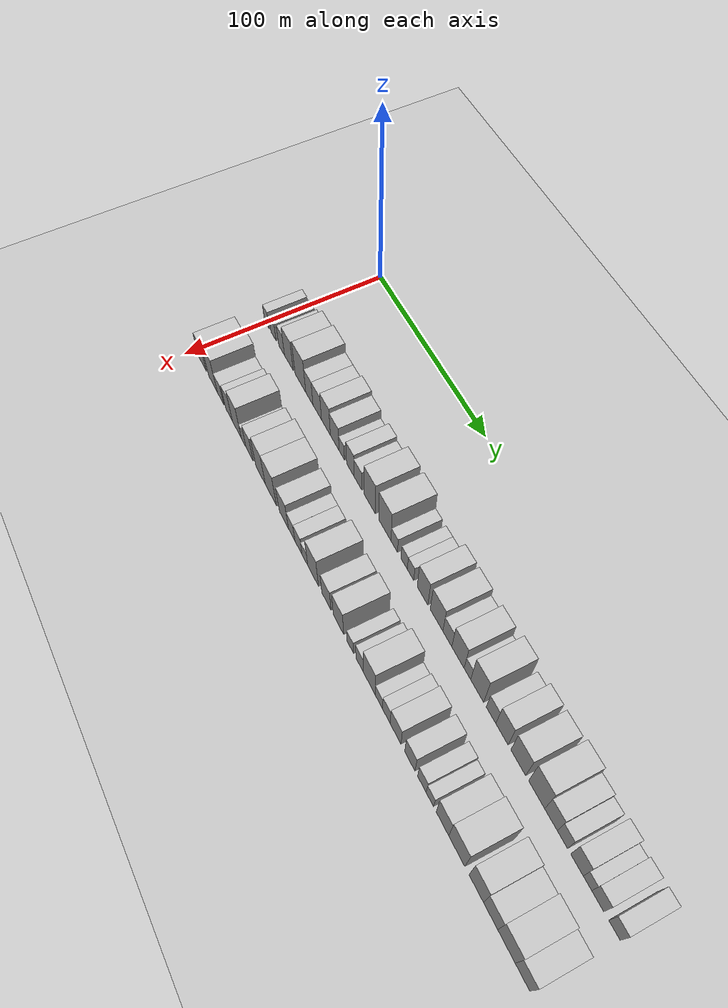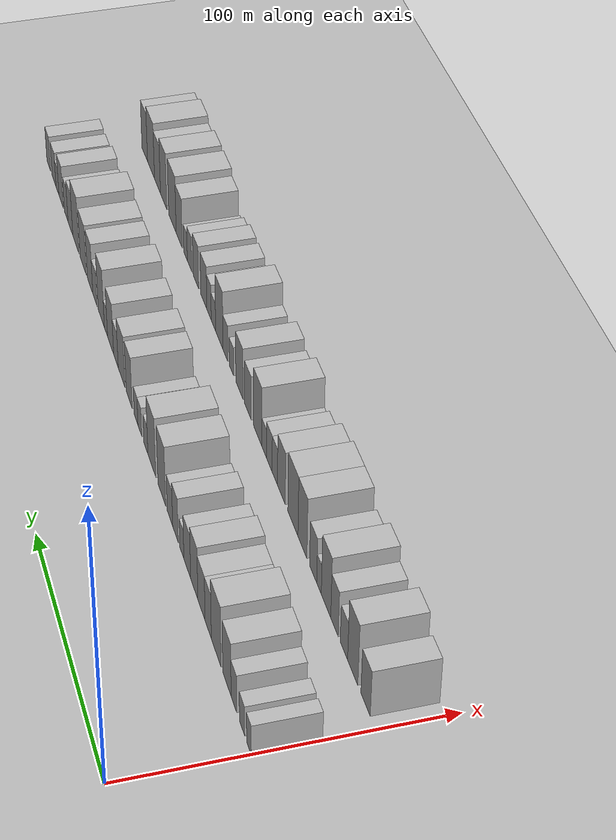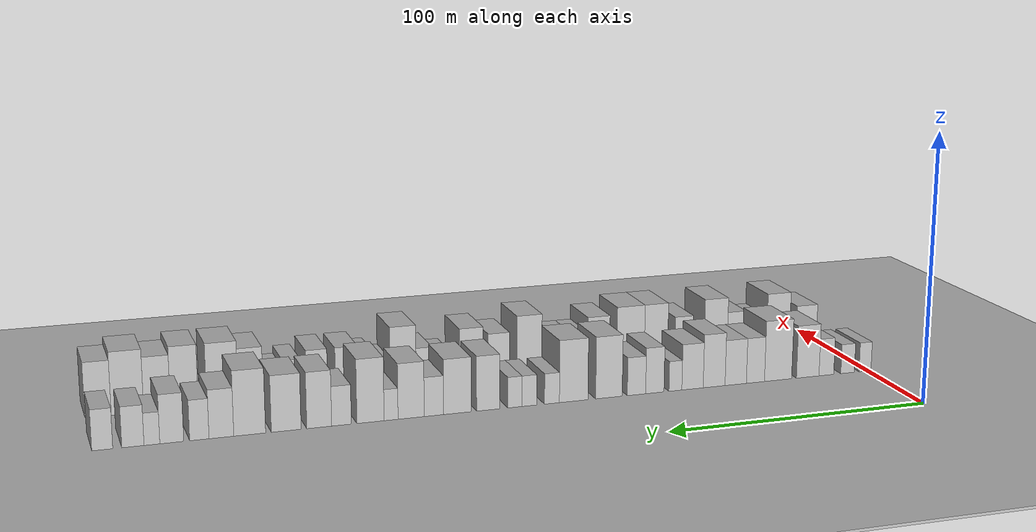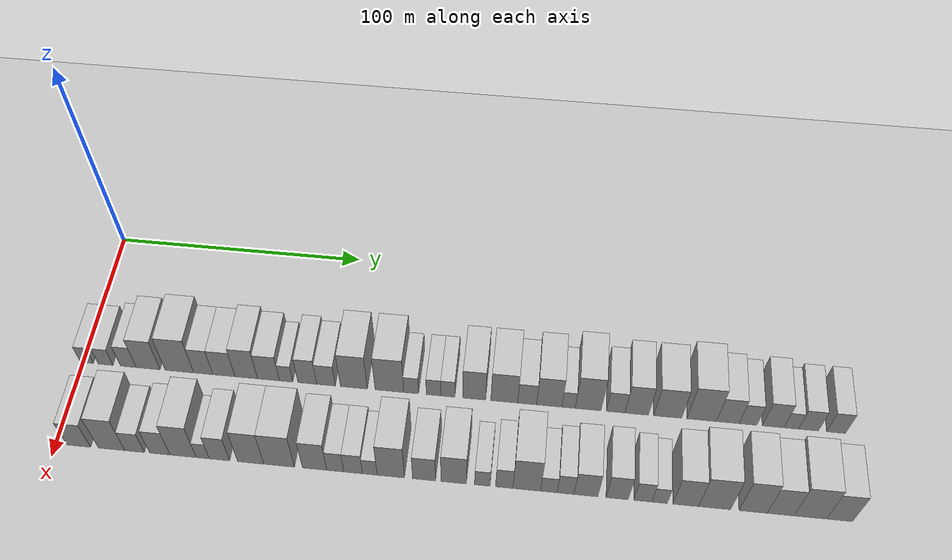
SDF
<sdf version="1.6">
 <world name="default">
  <include><name>ground_plane_1</name><uri>model://HANNAS_ground_plane</uri></include>
  <include>
   <name>ground_plane_2</name>
   <uri>model://HANNAS_ground_plane</uri>
   <pose>100 0 0  0 0 0</pose>
  </include>
  <model name="building_34">
   <static>1</static>
   <pose>50.0000 1.8342 0 0.000000 0.000000 0.000000</pose>
   <link name="link">
    <pose>0 0 6.00 0 0 0</pose>
    <collision name="collision"><geometry><box><size>20.0000 5.1160 12.0000</size></box></geometry></collision>
    <visual name="visual">
     <cast_shadows>0</cast_shadows>
     <geometry><box><size>20.0000 5.1160 12.0000</size></box></geometry>
     <material>
      <script>
       <uri>model://HANNAS_wall/materials/scripts</uri>
       <uri>model://HANNAS_wall/materials/textures</uri>
       <name>vrc/HANNAS_wall</name>
      </script>
     </material>
    </visual>
   </link>
  </model>
  <model name="building_35">
   <static>1</static>
   <pose>50.0000 9.2959 0 0.000000 0.000000 0.000000</pose>
   <link name="link">
    <pose>0 0 6.00 0 0 0</pose>
    <collision name="collision"><geometry><box><size>20.0000 5.8074 12.0000</size></box></geometry></collision>
    <visual name="visual">
     <cast_shadows>0</cast_shadows>
     <geometry><box><size>20.0000 5.8074 12.0000</size></box></geometry>
     <material>
      <script>
       <uri>model://HANNAS_wall/materials/scripts</uri>
       <uri>model://HANNAS_wall/materials/textures</uri>
       <name>vrc/HANNAS_wall</name>
      </script>
     </material>
    </visual>
   </link>
  </model>
  <model name="building_36">
   <static>1</static>
   <pose>50.0000 18.3228 0 0.000000 0.000000 0.000000</pose>
   <link name="link">
    <pose>0 0 7.50 0 0 0</pose>
    <collision name="collision"><geometry><box><size>20.0000 6.2464 15.0000</size></box></geometry></collision>
    <visual name="visual">
     <cast_shadows>0</cast_shadows>
     <geometry><box><size>20.0000 6.2464 15.0000</size></box></geometry>
     <material>
      <script>
       <uri>model://HANNAS_wall/materials/scripts</uri>
       <uri>model://HANNAS_wall/materials/textures</uri>
       <name>vrc/HANNAS_wall</name>
      </script>
     </material>
    </visual>
   </link>
  </model>
  <model name="building_37">
   <static>1</static>
   <pose>50.0000 26.1882 0 0.000000 0.000000 0.000000</pose>
   <link name="link">
    <pose>0 0 10.50 0 0 0</pose>
    <collision name="collision"><geometry><box><size>20.0000 9.4845 21.0000</size></box></geometry></collision>
    <visual name="visual">
     <cast_shadows>0</cast_shadows>
     <geometry><box><size>20.0000 9.4845 21.0000</size></box></geometry>
     <material>
      <script>
       <uri>model://HANNAS_wall/materials/scripts</uri>
       <uri>model://HANNAS_wall/materials/textures</uri>
       <name>vrc/HANNAS_wall</name>
      </script>
     </material>
    </visual>
   </link>
  </model>
  <model name="building_38">
   <static>1</static>
   <pose>50.0000 38.5877 0 0.000000 0.000000 0.000000</pose>
   <link name="link">
    <pose>0 0 12.00 0 0 0</pose>
    <collision name="collision"><geometry><box><size>20.0000 11.3144 24.0000</size></box></geometry></collision>
    <visual name="visual">
     <cast_shadows>0</cast_shadows>
     <geometry><box><size>20.0000 11.3144 24.0000</size></box></geometry>
     <material>
      <script>
       <uri>model://HANNAS_wall/materials/scripts</uri>
       <uri>model://HANNAS_wall/materials/textures</uri>
       <name>vrc/HANNAS_wall</name>
      </script>
     </material>
    </visual>
   </link>
  </model>
  <model name="building_39">
   <static>1</static>
   <pose>50.0000 47.9888 0 0.000000 0.000000 0.000000</pose>
   <link name="link">
    <pose>0 0 9.00 0 0 0</pose>
    <collision name="collision"><geometry><box><size>20.0000 7.4880 18.0000</size></box></geometry></collision>
    <visual name="visual">
     <cast_shadows>0</cast_shadows>
     <geometry><box><size>20.0000 7.4880 18.0000</size></box></geometry>
     <material>
      <script>
       <uri>model://HANNAS_wall/materials/scripts</uri>
       <uri>model://HANNAS_wall/materials/textures</uri>
       <name>vrc/HANNAS_wall</name>
      </script>
     </material>
    </visual>
   </link>
  </model>
  <model name="building_40">
   <static>1</static>
   <pose>50.0000 56.1021 0 0.000000 0.000000 0.000000</pose>
   <link name="link">
    <pose>0 0 9.00 0 0 0</pose>
    <collision name="collision"><geometry><box><size>20.0000 8.7385 18.0000</size></box></geometry></collision>
    <visual name="visual">
     <cast_shadows>0</cast_shadows>
     <geometry><box><size>20.0000 8.7385 18.0000</size></box></geometry>
     <material>
      <script>
       <uri>model://HANNAS_wall/materials/scripts</uri>
       <uri>model://HANNAS_wall/materials/textures</uri>
       <name>vrc/HANNAS_wall</name>
      </script>
     </material>
    </visual>
   </link>
  </model>
  <model name="building_41">
   <static>1</static>
   <pose>50.0000 64.9171 0 0.000000 0.000000 0.000000</pose>
   <link name="link">
    <pose>0 0 10.50 0 0 0</pose>
    <collision name="collision"><geometry><box><size>20.0000 8.8916 21.0000</size></box></geometry></collision>
    <visual name="visual">
     <cast_shadows>0</cast_shadows>
     <geometry><box><size>20.0000 8.8916 21.0000</size></box></geometry>
     <material>
      <script>
       <uri>model://HANNAS_wall/materials/scripts</uri>
       <uri>model://HANNAS_wall/materials/textures</uri>
       <name>vrc/HANNAS_wall</name>
      </script>
     </material>
    </visual>
   </link>
  </model>
  <model name="building_42">
   <static>1</static>
   <pose>50.0000 73.6666 0 0.000000 0.000000 0.000000</pose>
   <link name="link">
    <pose>0 0 9.00 0 0 0</pose>
    <collision name="collision"><geometry><box><size>20.0000 8.6075 18.0000</size></box></geometry></collision>
    <visual name="visual">
     <cast_shadows>0</cast_shadows>
     <geometry><box><size>20.0000 8.6075 18.0000</size></box></geometry>
     <material>
      <script>
       <uri>model://HANNAS_wall/materials/scripts</uri>
       <uri>model://HANNAS_wall/materials/textures</uri>
       <name>vrc/HANNAS_wall</name>
      </script>
     </material>
    </visual>
   </link>
  </model>
  <model name="building_43">
   <static>1</static>
   <pose>50.0000 80.5602 0 0.000000 0.000000 0.000000</pose>
   <link name="link">
    <pose>0 0 6.00 0 0 0</pose>
    <collision name="collision"><geometry><box><size>20.0000 5.1797 12.0000</size></box></geometry></collision>
    <visual name="visual">
     <cast_shadows>0</cast_shadows>
     <geometry><box><size>20.0000 5.1797 12.0000</size></box></geometry>
     <material>
      <script>
       <uri>model://HANNAS_wall/materials/scripts</uri>
       <uri>model://HANNAS_wall/materials/textures</uri>
       <name>vrc/HANNAS_wall</name>
      </script>
     </material>
    </visual>
   </link>
  </model>
  <model name="building_44">
   <static>1</static>
   <pose>50.0000 88.7926 0 0.000000 0.000000 0.000000</pose>
   <link name="link">
    <pose>0 0 9.00 0 0 0</pose>
    <collision name="collision"><geometry><box><size>20.0000 7.2850 18.0000</size></box></geometry></collision>
    <visual name="visual">
     <cast_shadows>0</cast_shadows>
     <geometry><box><size>20.0000 7.2850 18.0000</size></box></geometry>
     <material>
      <script>
       <uri>model://HANNAS_wall/materials/scripts</uri>
       <uri>model://HANNAS_wall/materials/textures</uri>
       <name>vrc/HANNAS_wall</name>
      </script>
     </material>
    </visual>
   </link>
  </model>
  <model name="building_45">
   <static>1</static>
   <pose>50.0000 96.0715 0 0.000000 0.000000 0.000000</pose>
   <link name="link">
    <pose>0 0 7.50 0 0 0</pose>
    <collision name="collision"><geometry><box><size>20.0000 7.2729 15.0000</size></box></geometry></collision>
    <visual name="visual">
     <cast_shadows>0</cast_shadows>
     <geometry><box><size>20.0000 7.2729 15.0000</size></box></geometry>
     <material>
      <script>
       <uri>model://HANNAS_wall/materials/scripts</uri>
       <uri>model://HANNAS_wall/materials/textures</uri>
       <name>vrc/HANNAS_wall</name>
      </script>
     </material>
    </visual>
   </link>
  </model>
  <model name="building_46">
   <static>1</static>
   <pose>50.0000 106.9145 0 0.000000 0.000000 0.000000</pose>
   <link name="link">
    <pose>0 0 12.00 0 0 0</pose>
    <collision name="collision"><geometry><box><size>20.0000 10.4130 24.0000</size></box></geometry></collision>
    <visual name="visual">
     <cast_shadows>0</cast_shadows>
     <geometry><box><size>20.0000 10.4130 24.0000</size></box></geometry>
     <material>
      <script>
       <uri>model://HANNAS_wall/materials/scripts</uri>
       <uri>model://HANNAS_wall/materials/textures</uri>
       <name>vrc/HANNAS_wall</name>
      </script>
     </material>
    </visual>
   </link>
  </model>
  <model name="building_47">
   <static>1</static>
   <pose>50.0000 120.6507 0 0.000000 0.000000 0.000000</pose>
   <link name="link">
    <pose>0 0 12.00 0 0 0</pose>
    <collision name="collision"><geometry><box><size>20.0000 11.0594 24.0000</size></box></geometry></collision>
    <visual name="visual">
     <cast_shadows>0</cast_shadows>
     <geometry><box><size>20.0000 11.0594 24.0000</size></box></geometry>
     <material>
      <script>
       <uri>model://HANNAS_wall/materials/scripts</uri>
       <uri>model://HANNAS_wall/materials/textures</uri>
       <name>vrc/HANNAS_wall</name>
      </script>
     </material>
    </visual>
   </link>
  </model>
  <model name="building_48">
   <static>1</static>
   <pose>50.0000 129.0398 0 0.000000 0.000000 0.000000</pose>
   <link name="link">
    <pose>0 0 6.00 0 0 0</pose>
    <collision name="collision"><geometry><box><size>20.0000 5.7189 12.0000</size></box></geometry></collision>
    <visual name="visual">
     <cast_shadows>0</cast_shadows>
     <geometry><box><size>20.0000 5.7189 12.0000</size></box></geometry>
     <material>
      <script>
       <uri>model://HANNAS_wall/materials/scripts</uri>
       <uri>model://HANNAS_wall/materials/textures</uri>
       <name>vrc/HANNAS_wall</name>
      </script>
     </material>
    </visual>
   </link>
  </model>
  <model name="building_49">
   <static>1</static>
   <pose>50.0000 137.6618 0 0.000000 0.000000 0.000000</pose>
   <link name="link">
    <pose>0 0 6.00 0 0 0</pose>
    <collision name="collision"><geometry><box><size>20.0000 5.5251 12.0000</size></box></geometry></collision>
    <visual name="visual">
     <cast_shadows>0</cast_shadows>
     <geometry><box><size>20.0000 5.5251 12.0000</size></box></geometry>
     <material>
      <script>
       <uri>model://HANNAS_wall/materials/scripts</uri>
       <uri>model://HANNAS_wall/materials/textures</uri>
       <name>vrc/HANNAS_wall</name>
      </script>
     </material>
    </visual>
   </link>
  </model>
  <model name="building_50">
   <static>1</static>
   <pose>50.0000 143.1332 0 0.000000 0.000000 0.000000</pose>
   <link name="link">
    <pose>0 0 6.00 0 0 0</pose>
    <collision name="collision"><geometry><box><size>20.0000 5.4177 12.0000</size></box></geometry></collision>
    <visual name="visual">
     <cast_shadows>0</cast_shadows>
     <geometry><box><size>20.0000 5.4177 12.0000</size></box></geometry>
     <material>
      <script>
       <uri>model://HANNAS_wall/materials/scripts</uri>
       <uri>model://HANNAS_wall/materials/textures</uri>
       <name>vrc/HANNAS_wall</name>
      </script>
     </material>
    </visual>
   </link>
  </model>
  <model name="building_51">
   <static>1</static>
   <pose>50.0000 153.2381 0 0.000000 0.000000 0.000000</pose>
   <link name="link">
    <pose>0 0 10.50 0 0 0</pose>
    <collision name="collision"><geometry><box><size>20.0000 8.7923 21.0000</size></box></geometry></collision>
    <visual name="visual">
     <cast_shadows>0</cast_shadows>
     <geometry><box><size>20.0000 8.7923 21.0000</size></box></geometry>
     <material>
      <script>
       <uri>model://HANNAS_wall/materials/scripts</uri>
       <uri>model://HANNAS_wall/materials/textures</uri>
       <name>vrc/HANNAS_wall</name>
      </script>
     </material>
    </visual>
   </link>
  </model>
  <model name="building_52">
   <static>1</static>
   <pose>50.0000 164.7484 0 0.000000 0.000000 0.000000</pose>
   <link name="link">
    <pose>0 0 10.50 0 0 0</pose>
    <collision name="collision"><geometry><box><size>20.0000 10.2283 21.0000</size></box></geometry></collision>
    <visual name="visual">
     <cast_shadows>0</cast_shadows>
     <geometry><box><size>20.0000 10.2283 21.0000</size></box></geometry>
     <material>
      <script>
       <uri>model://HANNAS_wall/materials/scripts</uri>
       <uri>model://HANNAS_wall/materials/textures</uri>
       <name>vrc/HANNAS_wall</name>
      </script>
     </material>
    </visual>
   </link>
  </model>
  <model name="building_53">
   <static>1</static>
   <pose>50.0000 173.4440 0 0.000000 0.000000 0.000000</pose>
   <link name="link">
    <pose>0 0 7.50 0 0 0</pose>
    <collision name="collision"><geometry><box><size>20.0000 7.1629 15.0000</size></box></geometry></collision>
    <visual name="visual">
     <cast_shadows>0</cast_shadows>
     <geometry><box><size>20.0000 7.1629 15.0000</size></box></geometry>
     <material>
      <script>
       <uri>model://HANNAS_wall/materials/scripts</uri>
       <uri>model://HANNAS_wall/materials/textures</uri>
       <name>vrc/HANNAS_wall</name>
      </script>
     </material>
    </visual>
   </link>
  </model>
  <model name="building_54">
   <static>1</static>
   <pose>50.0000 181.8233 0 0.000000 0.000000 0.000000</pose>
   <link name="link">
    <pose>0 0 10.50 0 0 0</pose>
    <collision name="collision"><geometry><box><size>20.0000 9.5958 21.0000</size></box></geometry></collision>
    <visual name="visual">
     <cast_shadows>0</cast_shadows>
     <geometry><box><size>20.0000 9.5958 21.0000</size></box></geometry>
     <material>
      <script>
       <uri>model://HANNAS_wall/materials/scripts</uri>
       <uri>model://HANNAS_wall/materials/textures</uri>
       <name>vrc/HANNAS_wall</name>
      </script>
     </material>
    </visual>
   </link>
  </model>
  <model name="building_55">
   <static>1</static>
   <pose>50.0000 189.1549 0 0.000000 0.000000 0.000000</pose>
   <link name="link">
    <pose>0 0 6.00 0 0 0</pose>
    <collision name="collision"><geometry><box><size>20.0000 5.0674 12.0000</size></box></geometry></collision>
    <visual name="visual">
     <cast_shadows>0</cast_shadows>
     <geometry><box><size>20.0000 5.0674 12.0000</size></box></geometry>
     <material>
      <script>
       <uri>model://HANNAS_wall/materials/scripts</uri>
       <uri>model://HANNAS_wall/materials/textures</uri>
       <name>vrc/HANNAS_wall</name>
      </script>
     </material>
    </visual>
   </link>
  </model>
  <model name="building_56">
   <static>1</static>
   <pose>50.0000 196.6018 0 0.000000 0.000000 0.000000</pose>
   <link name="link">
    <pose>0 0 12.00 0 0 0</pose>
    <collision name="collision"><geometry><box><size>20.0000 9.8264 24.0000</size></box></geometry></collision>
    <visual name="visual">
     <cast_shadows>0</cast_shadows>
     <geometry><box><size>20.0000 9.8264 24.0000</size></box></geometry>
     <material>
      <script>
       <uri>model://HANNAS_wall/materials/scripts</uri>
       <uri>model://HANNAS_wall/materials/textures</uri>
       <name>vrc/HANNAS_wall</name>
      </script>
     </material>
    </visual>
   </link>
  </model>
  <model name="building_57">
   <static>1</static>
   <pose>50.0000 207.0331 0 0.000000 0.000000 0.000000</pose>
   <link name="link">
    <pose>0 0 7.50 0 0 0</pose>
    <collision name="collision"><geometry><box><size>20.0000 7.0361 15.0000</size></box></geometry></collision>
    <visual name="visual">
     <cast_shadows>0</cast_shadows>
     <geometry><box><size>20.0000 7.0361 15.0000</size></box></geometry>
     <material>
      <script>
       <uri>model://HANNAS_wall/materials/scripts</uri>
       <uri>model://HANNAS_wall/materials/textures</uri>
       <name>vrc/HANNAS_wall</name>
      </script>
     </material>
    </visual>
   </link>
  </model>
  <model name="building_58">
   <static>1</static>
   <pose>50.0000 214.9701 0 0.000000 0.000000 0.000000</pose>
   <link name="link">
    <pose>0 0 10.50 0 0 0</pose>
    <collision name="collision"><geometry><box><size>20.0000 8.8380 21.0000</size></box></geometry></collision>
    <visual name="visual">
     <cast_shadows>0</cast_shadows>
     <geometry><box><size>20.0000 8.8380 21.0000</size></box></geometry>
     <material>
      <script>
       <uri>model://HANNAS_wall/materials/scripts</uri>
       <uri>model://HANNAS_wall/materials/textures</uri>
       <name>vrc/HANNAS_wall</name>
      </script>
     </material>
    </visual>
   </link>
  </model>
  <model name="building_59">
   <static>1</static>
   <pose>50.0000 226.6173 0 0.000000 0.000000 0.000000</pose>
   <link name="link">
    <pose>0 0 10.50 0 0 0</pose>
    <collision name="collision"><geometry><box><size>20.0000 10.4563 21.0000</size></box></geometry></collision>
    <visual name="visual">
     <cast_shadows>0</cast_shadows>
     <geometry><box><size>20.0000 10.4563 21.0000</size></box></geometry>
     <material>
      <script>
       <uri>model://HANNAS_wall/materials/scripts</uri>
       <uri>model://HANNAS_wall/materials/textures</uri>
       <name>vrc/HANNAS_wall</name>
      </script>
     </material>
    </visual>
   </link>
  </model>
  <model name="building_60">
   <static>1</static>
   <pose>50.0000 239.3656 0 0.000000 0.000000 0.000000</pose>
   <link name="link">
    <pose>0 0 12.00 0 0 0</pose>
    <collision name="collision"><geometry><box><size>20.0000 11.0403 24.0000</size></box></geometry></collision>
    <visual name="visual">
     <cast_shadows>0</cast_shadows>
     <geometry><box><size>20.0000 11.0403 24.0000</size></box></geometry>
     <material>
      <script>
       <uri>model://HANNAS_wall/materials/scripts</uri>
       <uri>model://HANNAS_wall/materials/textures</uri>
       <name>vrc/HANNAS_wall</name>
      </script>
     </material>
    </visual>
   </link>
  </model>
  <model name="building_61">
   <static>1</static>
   <pose>50.0000 249.1334 0 0.000000 0.000000 0.000000</pose>
   <link name="link">
    <pose>0 0 9.00 0 0 0</pose>
    <collision name="collision"><geometry><box><size>20.0000 8.4952 18.0000</size></box></geometry></collision>
    <visual name="visual">
     <cast_shadows>0</cast_shadows>
     <geometry><box><size>20.0000 8.4952 18.0000</size></box></geometry>
     <material>
      <script>
       <uri>model://HANNAS_wall/materials/scripts</uri>
       <uri>model://HANNAS_wall/materials/textures</uri>
       <name>vrc/HANNAS_wall</name>
      </script>
     </material>
    </visual>
   </link>
  </model>
  <model name="building_62">
   <static>1</static>
   <pose>50.0000 256.6926 0 0.000000 0.000000 0.000000</pose>
   <link name="link">
    <pose>0 0 7.50 0 0 0</pose>
    <collision name="collision"><geometry><box><size>20.0000 6.6233 15.0000</size></box></geometry></collision>
    <visual name="visual">
     <cast_shadows>0</cast_shadows>
     <geometry><box><size>20.0000 6.6233 15.0000</size></box></geometry>
     <material>
      <script>
       <uri>model://HANNAS_wall/materials/scripts</uri>
       <uri>model://HANNAS_wall/materials/textures</uri>
       <name>vrc/HANNAS_wall</name>
      </script>
     </material>
    </visual>
   </link>
  </model>
  <model name="building_63">
   <static>1</static>
   <pose>50.0000 266.0494 0 0.000000 0.000000 0.000000</pose>
   <link name="link">
    <pose>0 0 9.00 0 0 0</pose>
    <collision name="collision"><geometry><box><size>20.0000 8.0903 18.0000</size></box></geometry></collision>
    <visual name="visual">
     <cast_shadows>0</cast_shadows>
     <geometry><box><size>20.0000 8.0903 18.0000</size></box></geometry>
     <material>
      <script>
       <uri>model://HANNAS_wall/materials/scripts</uri>
       <uri>model://HANNAS_wall/materials/textures</uri>
       <name>vrc/HANNAS_wall</name>
      </script>
     </material>
    </visual>
   </link>
  </model>
  <model name="building_64">
   <static>1</static>
   <pose>50.0000 272.7504 0 0.000000 0.000000 0.000000</pose>
   <link name="link">
    <pose>0 0 6.00 0 0 0</pose>
    <collision name="collision"><geometry><box><size>20.0000 5.3117 12.0000</size></box></geometry></collision>
    <visual name="visual">
     <cast_shadows>0</cast_shadows>
     <geometry><box><size>20.0000 5.3117 12.0000</size></box></geometry>
     <material>
      <script>
       <uri>model://HANNAS_wall/materials/scripts</uri>
       <uri>model://HANNAS_wall/materials/textures</uri>
       <name>vrc/HANNAS_wall</name>
      </script>
     </material>
    </visual>
   </link>
  </model>
  <model name="building_65">
   <static>1</static>
   <pose>50.0000 279.1155 0 0.000000 0.000000 0.000000</pose>
   <link name="link">
    <pose>0 0 7.50 0 0 0</pose>
    <collision name="collision"><geometry><box><size>20.0000 7.4184 15.0000</size></box></geometry></collision>
    <visual name="visual">
     <cast_shadows>0</cast_shadows>
     <geometry><box><size>20.0000 7.4184 15.0000</size></box></geometry>
     <material>
      <script>
       <uri>model://HANNAS_wall/materials/scripts</uri>
       <uri>model://HANNAS_wall/materials/textures</uri>
       <name>vrc/HANNAS_wall</name>
      </script>
     </material>
    </visual>
   </link>
  </model>
  <model name="building_66">
   <static>1</static>
   <pose>50.0000 289.3066 0 0.000000 0.000000 0.000000</pose>
   <link name="link">
    <pose>0 0 7.50 0 0 0</pose>
    <collision name="collision"><geometry><box><size>20.0000 6.9639 15.0000</size></box></geometry></collision>
    <visual name="visual">
     <cast_shadows>0</cast_shadows>
     <geometry><box><size>20.0000 6.9639 15.0000</size></box></geometry>
     <material>
      <script>
       <uri>model://HANNAS_wall/materials/scripts</uri>
       <uri>model://HANNAS_wall/materials/textures</uri>
       <name>vrc/HANNAS_wall</name>
      </script>
     </material>
    </visual>
   </link>
  </model>
  <model name="building_99">
   <static>1</static>
   <pose>85.0000 9.1020 0 0.000000 0.000000 0.000000</pose>
   <link name="link">
    <pose>0 0 9.00 0 0 0</pose>
    <collision name="collision"><geometry><box><size>20.0000 8.9428 18.0000</size></box></geometry></collision>
    <visual name="visual">
     <cast_shadows>0</cast_shadows>
     <geometry><box><size>20.0000 8.9428 18.0000</size></box></geometry>
     <material>
      <script>
       <uri>model://HANNAS_wall/materials/scripts</uri>
       <uri>model://HANNAS_wall/materials/textures</uri>
       <name>vrc/HANNAS_wall</name>
      </script>
     </material>
    </visual>
   </link>
  </model>
  <model name="building_100">
   <static>1</static>
   <pose>85.0000 21.5880 0 0.000000 0.000000 0.000000</pose>
   <link name="link">
    <pose>0 0 12.00 0 0 0</pose>
    <collision name="collision"><geometry><box><size>20.0000 10.0290 24.0000</size></box></geometry></collision>
    <visual name="visual">
     <cast_shadows>0</cast_shadows>
     <geometry><box><size>20.0000 10.0290 24.0000</size></box></geometry>
     <material>
      <script>
       <uri>model://HANNAS_wall/materials/scripts</uri>
       <uri>model://HANNAS_wall/materials/textures</uri>
       <name>vrc/HANNAS_wall</name>
      </script>
     </material>
    </visual>
   </link>
  </model>
  <model name="building_101">
   <static>1</static>
   <pose>85.0000 30.3032 0 0.000000 0.000000 0.000000</pose>
   <link name="link">
    <pose>0 0 7.50 0 0 0</pose>
    <collision name="collision"><geometry><box><size>20.0000 7.4014 15.0000</size></box></geometry></collision>
    <visual name="visual">
     <cast_shadows>0</cast_shadows>
     <geometry><box><size>20.0000 7.4014 15.0000</size></box></geometry>
     <material>
      <script>
       <uri>model://HANNAS_wall/materials/scripts</uri>
       <uri>model://HANNAS_wall/materials/textures</uri>
       <name>vrc/HANNAS_wall</name>
      </script>
     </material>
    </visual>
   </link>
  </model>
  <model name="building_102">
   <static>1</static>
   <pose>85.0000 39.8490 0 0.000000 0.000000 0.000000</pose>
   <link name="link">
    <pose>0 0 9.00 0 0 0</pose>
    <collision name="collision"><geometry><box><size>20.0000 7.6903 18.0000</size></box></geometry></collision>
    <visual name="visual">
     <cast_shadows>0</cast_shadows>
     <geometry><box><size>20.0000 7.6903 18.0000</size></box></geometry>
     <material>
      <script>
       <uri>model://HANNAS_wall/materials/scripts</uri>
       <uri>model://HANNAS_wall/materials/textures</uri>
       <name>vrc/HANNAS_wall</name>
      </script>
     </material>
    </visual>
   </link>
  </model>
  <model name="building_103">
   <static>1</static>
   <pose>85.0000 48.6311 0 0.000000 0.000000 0.000000</pose>
   <link name="link">
    <pose>0 0 12.00 0 0 0</pose>
    <collision name="collision"><geometry><box><size>20.0000 9.8739 24.0000</size></box></geometry></collision>
    <visual name="visual">
     <cast_shadows>0</cast_shadows>
     <geometry><box><size>20.0000 9.8739 24.0000</size></box></geometry>
     <material>
      <script>
       <uri>model://HANNAS_wall/materials/scripts</uri>
       <uri>model://HANNAS_wall/materials/textures</uri>
       <name>vrc/HANNAS_wall</name>
      </script>
     </material>
    </visual>
   </link>
  </model>
  <model name="building_104">
   <static>1</static>
   <pose>85.0000 56.0130 0 0.000000 0.000000 0.000000</pose>
   <link name="link">
    <pose>0 0 6.00 0 0 0</pose>
    <collision name="collision"><geometry><box><size>20.0000 4.8899 12.0000</size></box></geometry></collision>
    <visual name="visual">
     <cast_shadows>0</cast_shadows>
     <geometry><box><size>20.0000 4.8899 12.0000</size></box></geometry>
     <material>
      <script>
       <uri>model://HANNAS_wall/materials/scripts</uri>
       <uri>model://HANNAS_wall/materials/textures</uri>
       <name>vrc/HANNAS_wall</name>
      </script>
     </material>
    </visual>
   </link>
  </model>
  <model name="building_105">
   <static>1</static>
   <pose>85.0000 62.2672 0 0.000000 0.000000 0.000000</pose>
   <link name="link">
    <pose>0 0 9.00 0 0 0</pose>
    <collision name="collision"><geometry><box><size>20.0000 7.6184 18.0000</size></box></geometry></collision>
    <visual name="visual">
     <cast_shadows>0</cast_shadows>
     <geometry><box><size>20.0000 7.6184 18.0000</size></box></geometry>
     <material>
      <script>
       <uri>model://HANNAS_wall/materials/scripts</uri>
       <uri>model://HANNAS_wall/materials/textures</uri>
       <name>vrc/HANNAS_wall</name>
      </script>
     </material>
    </visual>
   </link>
  </model>
  <model name="building_106">
   <static>1</static>
   <pose>85.0000 73.9547 0 0.000000 0.000000 0.000000</pose>
   <link name="link">
    <pose>0 0 12.00 0 0 0</pose>
    <collision name="collision"><geometry><box><size>20.0000 9.7567 24.0000</size></box></geometry></collision>
    <visual name="visual">
     <cast_shadows>0</cast_shadows>
     <geometry><box><size>20.0000 9.7567 24.0000</size></box></geometry>
     <material>
      <script>
       <uri>model://HANNAS_wall/materials/scripts</uri>
       <uri>model://HANNAS_wall/materials/textures</uri>
       <name>vrc/HANNAS_wall</name>
      </script>
     </material>
    </visual>
   </link>
  </model>
  <model name="building_107">
   <static>1</static>
   <pose>85.0000 84.5637 0 0.000000 0.000000 0.000000</pose>
   <link name="link">
    <pose>0 0 12.00 0 0 0</pose>
    <collision name="collision"><geometry><box><size>20.0000 11.4613 24.0000</size></box></geometry></collision>
    <visual name="visual">
     <cast_shadows>0</cast_shadows>
     <geometry><box><size>20.0000 11.4613 24.0000</size></box></geometry>
     <material>
      <script>
       <uri>model://HANNAS_wall/materials/scripts</uri>
       <uri>model://HANNAS_wall/materials/textures</uri>
       <name>vrc/HANNAS_wall</name>
      </script>
     </material>
    </visual>
   </link>
  </model>
  <model name="building_108">
   <static>1</static>
   <pose>85.0000 97.8060 0 0.000000 0.000000 0.000000</pose>
   <link name="link">
    <pose>0 0 10.50 0 0 0</pose>
    <collision name="collision"><geometry><box><size>20.0000 9.0234 21.0000</size></box></geometry></collision>
    <visual name="visual">
     <cast_shadows>0</cast_shadows>
     <geometry><box><size>20.0000 9.0234 21.0000</size></box></geometry>
     <material>
      <script>
       <uri>model://HANNAS_wall/materials/scripts</uri>
       <uri>model://HANNAS_wall/materials/textures</uri>
       <name>vrc/HANNAS_wall</name>
      </script>
     </material>
    </visual>
   </link>
  </model>
  <model name="building_109">
   <static>1</static>
   <pose>85.0000 105.4584 0 0.000000 0.000000 0.000000</pose>
   <link name="link">
    <pose>0 0 7.50 0 0 0</pose>
    <collision name="collision"><geometry><box><size>20.0000 6.2814 15.0000</size></box></geometry></collision>
    <visual name="visual">
     <cast_shadows>0</cast_shadows>
     <geometry><box><size>20.0000 6.2814 15.0000</size></box></geometry>
     <material>
      <script>
       <uri>model://HANNAS_wall/materials/scripts</uri>
       <uri>model://HANNAS_wall/materials/textures</uri>
       <name>vrc/HANNAS_wall</name>
      </script>
     </material>
    </visual>
   </link>
  </model>
  <model name="building_110">
   <static>1</static>
   <pose>85.0000 112.0550 0 0.000000 0.000000 0.000000</pose>
   <link name="link">
    <pose>0 0 7.50 0 0 0</pose>
    <collision name="collision"><geometry><box><size>20.0000 6.9116 15.0000</size></box></geometry></collision>
    <visual name="visual">
     <cast_shadows>0</cast_shadows>
     <geometry><box><size>20.0000 6.9116 15.0000</size></box></geometry>
     <material>
      <script>
       <uri>model://HANNAS_wall/materials/scripts</uri>
       <uri>model://HANNAS_wall/materials/textures</uri>
       <name>vrc/HANNAS_wall</name>
      </script>
     </material>
    </visual>
   </link>
  </model>
  <model name="building_111">
   <static>1</static>
   <pose>85.0000 118.2302 0 0.000000 0.000000 0.000000</pose>
   <link name="link">
    <pose>0 0 6.00 0 0 0</pose>
    <collision name="collision"><geometry><box><size>20.0000 5.4388 12.0000</size></box></geometry></collision>
    <visual name="visual">
     <cast_shadows>0</cast_shadows>
     <geometry><box><size>20.0000 5.4388 12.0000</size></box></geometry>
     <material>
      <script>
       <uri>model://HANNAS_wall/materials/scripts</uri>
       <uri>model://HANNAS_wall/materials/textures</uri>
       <name>vrc/HANNAS_wall</name>
      </script>
     </material>
    </visual>
   </link>
  </model>
  <model name="building_112">
   <static>1</static>
   <pose>85.0000 125.9556 0 0.000000 0.000000 0.000000</pose>
   <link name="link">
    <pose>0 0 12.00 0 0 0</pose>
    <collision name="collision"><geometry><box><size>20.0000 10.0120 24.0000</size></box></geometry></collision>
    <visual name="visual">
     <cast_shadows>0</cast_shadows>
     <geometry><box><size>20.0000 10.0120 24.0000</size></box></geometry>
     <material>
      <script>
       <uri>model://HANNAS_wall/materials/scripts</uri>
       <uri>model://HANNAS_wall/materials/textures</uri>
       <name>vrc/HANNAS_wall</name>
      </script>
     </material>
    </visual>
   </link>
  </model>
  <model name="building_113">
   <static>1</static>
   <pose>85.0000 138.1606 0 0.000000 0.000000 0.000000</pose>
   <link name="link">
    <pose>0 0 9.00 0 0 0</pose>
    <collision name="collision"><geometry><box><size>20.0000 8.3981 18.0000</size></box></geometry></collision>
    <visual name="visual">
     <cast_shadows>0</cast_shadows>
     <geometry><box><size>20.0000 8.3981 18.0000</size></box></geometry>
     <material>
      <script>
       <uri>model://HANNAS_wall/materials/scripts</uri>
       <uri>model://HANNAS_wall/materials/textures</uri>
       <name>vrc/HANNAS_wall</name>
      </script>
     </material>
    </visual>
   </link>
  </model>
  <model name="building_114">
   <static>1</static>
   <pose>85.0000 149.0062 0 0.000000 0.000000 0.000000</pose>
   <link name="link">
    <pose>0 0 10.50 0 0 0</pose>
    <collision name="collision"><geometry><box><size>20.0000 9.2929 21.0000</size></box></geometry></collision>
    <visual name="visual">
     <cast_shadows>0</cast_shadows>
     <geometry><box><size>20.0000 9.2929 21.0000</size></box></geometry>
     <material>
      <script>
       <uri>model://HANNAS_wall/materials/scripts</uri>
       <uri>model://HANNAS_wall/materials/textures</uri>
       <name>vrc/HANNAS_wall</name>
      </script>
     </material>
    </visual>
   </link>
  </model>
  <model name="building_115">
   <static>1</static>
   <pose>85.0000 159.4780 0 0.000000 0.000000 0.000000</pose>
   <link name="link">
    <pose>0 0 6.00 0 0 0</pose>
    <collision name="collision"><geometry><box><size>20.0000 5.6508 12.0000</size></box></geometry></collision>
    <visual name="visual">
     <cast_shadows>0</cast_shadows>
     <geometry><box><size>20.0000 5.6508 12.0000</size></box></geometry>
     <material>
      <script>
       <uri>model://HANNAS_wall/materials/scripts</uri>
       <uri>model://HANNAS_wall/materials/textures</uri>
       <name>vrc/HANNAS_wall</name>
      </script>
     </material>
    </visual>
   </link>
  </model>
  <model name="building_116">
   <static>1</static>
   <pose>85.0000 167.4500 0 0.000000 0.000000 0.000000</pose>
   <link name="link">
    <pose>0 0 7.50 0 0 0</pose>
    <collision name="collision"><geometry><box><size>20.0000 6.2932 15.0000</size></box></geometry></collision>
    <visual name="visual">
     <cast_shadows>0</cast_shadows>
     <geometry><box><size>20.0000 6.2932 15.0000</size></box></geometry>
     <material>
      <script>
       <uri>model://HANNAS_wall/materials/scripts</uri>
       <uri>model://HANNAS_wall/materials/textures</uri>
       <name>vrc/HANNAS_wall</name>
      </script>
     </material>
    </visual>
   </link>
  </model>
  <model name="building_117">
   <static>1</static>
   <pose>85.0000 175.6063 0 0.000000 0.000000 0.000000</pose>
   <link name="link">
    <pose>0 0 12.00 0 0 0</pose>
    <collision name="collision"><geometry><box><size>20.0000 10.0194 24.0000</size></box></geometry></collision>
    <visual name="visual">
     <cast_shadows>0</cast_shadows>
     <geometry><box><size>20.0000 10.0194 24.0000</size></box></geometry>
     <material>
      <script>
       <uri>model://HANNAS_wall/materials/scripts</uri>
       <uri>model://HANNAS_wall/materials/textures</uri>
       <name>vrc/HANNAS_wall</name>
      </script>
     </material>
    </visual>
   </link>
  </model>
  <model name="building_118">
   <static>1</static>
   <pose>85.0000 183.6101 0 0.000000 0.000000 0.000000</pose>
   <link name="link">
    <pose>0 0 6.00 0 0 0</pose>
    <collision name="collision"><geometry><box><size>20.0000 5.9882 12.0000</size></box></geometry></collision>
    <visual name="visual">
     <cast_shadows>0</cast_shadows>
     <geometry><box><size>20.0000 5.9882 12.0000</size></box></geometry>
     <material>
      <script>
       <uri>model://HANNAS_wall/materials/scripts</uri>
       <uri>model://HANNAS_wall/materials/textures</uri>
       <name>vrc/HANNAS_wall</name>
      </script>
     </material>
    </visual>
   </link>
  </model>
  <model name="building_119">
   <static>1</static>
   <pose>85.0000 189.6781 0 0.000000 0.000000 0.000000</pose>
   <link name="link">
    <pose>0 0 7.50 0 0 0</pose>
    <collision name="collision"><geometry><box><size>20.0000 6.1480 15.0000</size></box></geometry></collision>
    <visual name="visual">
     <cast_shadows>0</cast_shadows>
     <geometry><box><size>20.0000 6.1480 15.0000</size></box></geometry>
     <material>
      <script>
       <uri>model://HANNAS_wall/materials/scripts</uri>
       <uri>model://HANNAS_wall/materials/textures</uri>
       <name>vrc/HANNAS_wall</name>
      </script>
     </material>
    </visual>
   </link>
  </model>
  <model name="building_120">
   <static>1</static>
   <pose>85.0000 197.0523 0 0.000000 0.000000 0.000000</pose>
   <link name="link">
    <pose>0 0 9.00 0 0 0</pose>
    <collision name="collision"><geometry><box><size>20.0000 8.6003 18.0000</size></box></geometry></collision>
    <visual name="visual">
     <cast_shadows>0</cast_shadows>
     <geometry><box><size>20.0000 8.6003 18.0000</size></box></geometry>
     <material>
      <script>
       <uri>model://HANNAS_wall/materials/scripts</uri>
       <uri>model://HANNAS_wall/materials/textures</uri>
       <name>vrc/HANNAS_wall</name>
      </script>
     </material>
    </visual>
   </link>
  </model>
  <model name="building_121">
   <static>1</static>
   <pose>85.0000 208.3260 0 0.000000 0.000000 0.000000</pose>
   <link name="link">
    <pose>0 0 9.00 0 0 0</pose>
    <collision name="collision"><geometry><box><size>20.0000 7.9471 18.0000</size></box></geometry></collision>
    <visual name="visual">
     <cast_shadows>0</cast_shadows>
     <geometry><box><size>20.0000 7.9471 18.0000</size></box></geometry>
     <material>
      <script>
       <uri>model://HANNAS_wall/materials/scripts</uri>
       <uri>model://HANNAS_wall/materials/textures</uri>
       <name>vrc/HANNAS_wall</name>
      </script>
     </material>
    </visual>
   </link>
  </model>
  <model name="building_122">
   <static>1</static>
   <pose>85.0000 217.5419 0 0.000000 0.000000 0.000000</pose>
   <link name="link">
    <pose>0 0 7.50 0 0 0</pose>
    <collision name="collision"><geometry><box><size>20.0000 6.4848 15.0000</size></box></geometry></collision>
    <visual name="visual">
     <cast_shadows>0</cast_shadows>
     <geometry><box><size>20.0000 6.4848 15.0000</size></box></geometry>
     <material>
      <script>
       <uri>model://HANNAS_wall/materials/scripts</uri>
       <uri>model://HANNAS_wall/materials/textures</uri>
       <name>vrc/HANNAS_wall</name>
      </script>
     </material>
    </visual>
   </link>
  </model>
  <model name="building_123">
   <static>1</static>
   <pose>85.0000 223.5362 0 0.000000 0.000000 0.000000</pose>
   <link name="link">
    <pose>0 0 6.00 0 0 0</pose>
    <collision name="collision"><geometry><box><size>20.0000 5.5038 12.0000</size></box></geometry></collision>
    <visual name="visual">
     <cast_shadows>0</cast_shadows>
     <geometry><box><size>20.0000 5.5038 12.0000</size></box></geometry>
     <material>
      <script>
       <uri>model://HANNAS_wall/materials/scripts</uri>
       <uri>model://HANNAS_wall/materials/textures</uri>
       <name>vrc/HANNAS_wall</name>
      </script>
     </material>
    </visual>
   </link>
  </model>
  <model name="building_124">
   <static>1</static>
   <pose>85.0000 232.8861 0 0.000000 0.000000 0.000000</pose>
   <link name="link">
    <pose>0 0 10.50 0 0 0</pose>
    <collision name="collision"><geometry><box><size>20.0000 9.1961 21.0000</size></box></geometry></collision>
    <visual name="visual">
     <cast_shadows>0</cast_shadows>
     <geometry><box><size>20.0000 9.1961 21.0000</size></box></geometry>
     <material>
      <script>
       <uri>model://HANNAS_wall/materials/scripts</uri>
       <uri>model://HANNAS_wall/materials/textures</uri>
       <name>vrc/HANNAS_wall</name>
      </script>
     </material>
    </visual>
   </link>
  </model>
  <model name="building_125">
   <static>1</static>
   <pose>85.0000 243.1941 0 0.000000 0.000000 0.000000</pose>
   <link name="link">
    <pose>0 0 12.00 0 0 0</pose>
    <collision name="collision"><geometry><box><size>20.0000 11.4200 24.0000</size></box></geometry></collision>
    <visual name="visual">
     <cast_shadows>0</cast_shadows>
     <geometry><box><size>20.0000 11.4200 24.0000</size></box></geometry>
     <material>
      <script>
       <uri>model://HANNAS_wall/materials/scripts</uri>
       <uri>model://HANNAS_wall/materials/textures</uri>
       <name>vrc/HANNAS_wall</name>
      </script>
     </material>
    </visual>
   </link>
  </model>
  <model name="building_126">
   <static>1</static>
   <pose>85.0000 256.8920 0 0.000000 0.000000 0.000000</pose>
   <link name="link">
    <pose>0 0 12.00 0 0 0</pose>
    <collision name="collision"><geometry><box><size>20.0000 9.9758 24.0000</size></box></geometry></collision>
    <visual name="visual">
     <cast_shadows>0</cast_shadows>
     <geometry><box><size>20.0000 9.9758 24.0000</size></box></geometry>
     <material>
      <script>
       <uri>model://HANNAS_wall/materials/scripts</uri>
       <uri>model://HANNAS_wall/materials/textures</uri>
       <name>vrc/HANNAS_wall</name>
      </script>
     </material>
    </visual>
   </link>
  </model>
  <model name="building_127">
   <static>1</static>
   <pose>85.0000 266.6346 0 0.000000 0.000000 0.000000</pose>
   <link name="link">
    <pose>0 0 10.50 0 0 0</pose>
    <collision name="collision"><geometry><box><size>20.0000 9.5093 21.0000</size></box></geometry></collision>
    <visual name="visual">
     <cast_shadows>0</cast_shadows>
     <geometry><box><size>20.0000 9.5093 21.0000</size></box></geometry>
     <material>
      <script>
       <uri>model://HANNAS_wall/materials/scripts</uri>
       <uri>model://HANNAS_wall/materials/textures</uri>
       <name>vrc/HANNAS_wall</name>
      </script>
     </material>
    </visual>
   </link>
  </model>
  <model name="building_128">
   <static>1</static>
   <pose>85.0000 277.1054 0 0.000000 0.000000 0.000000</pose>
   <link name="link">
    <pose>0 0 12.00 0 0 0</pose>
    <collision name="collision"><geometry><box><size>20.0000 11.4323 24.0000</size></box></geometry></collision>
    <visual name="visual">
     <cast_shadows>0</cast_shadows>
     <geometry><box><size>20.0000 11.4323 24.0000</size></box></geometry>
     <material>
      <script>
       <uri>model://HANNAS_wall/materials/scripts</uri>
       <uri>model://HANNAS_wall/materials/textures</uri>
       <name>vrc/HANNAS_wall</name>
      </script>
     </material>
    </visual>
   </link>
  </model>
  <model name="building_129">
   <static>1</static>
   <pose>85.0000 287.4214 0 0.000000 0.000000 0.000000</pose>
   <link name="link">
    <pose>0 0 10.50 0 0 0</pose>
    <collision name="collision"><geometry><box><size>20.0000 9.1997 21.0000</size></box></geometry></collision>
    <visual name="visual">
     <cast_shadows>0</cast_shadows>
     <geometry><box><size>20.0000 9.1997 21.0000</size></box></geometry>
     <material>
      <script>
       <uri>model://HANNAS_wall/materials/scripts</uri>
       <uri>model://HANNAS_wall/materials/textures</uri>
       <name>vrc/HANNAS_wall</name>
      </script>
     </material>
    </visual>
   </link>
  </model>
 </world>
</sdf>
